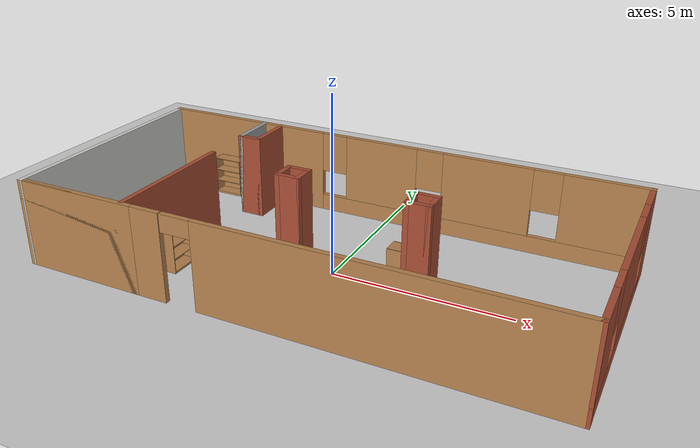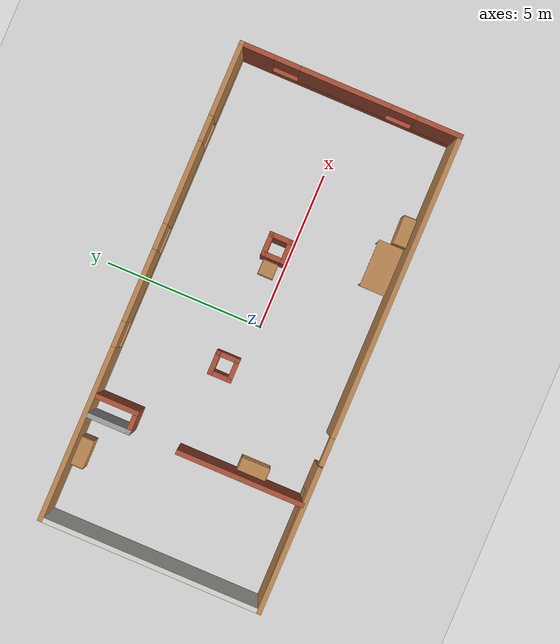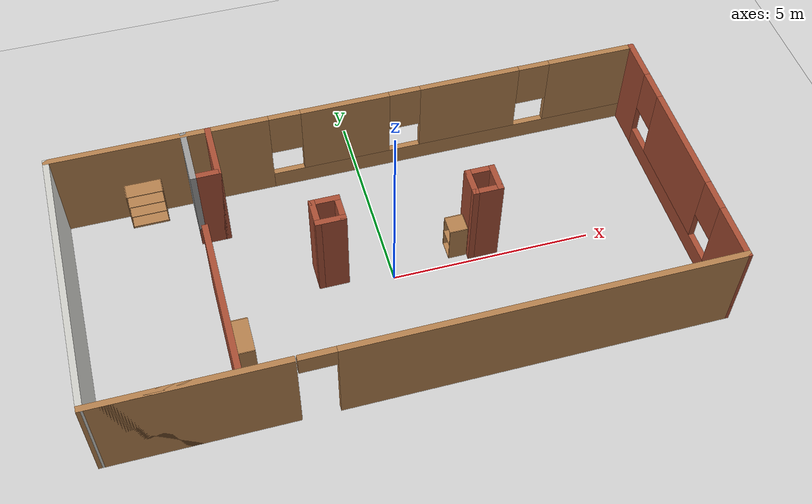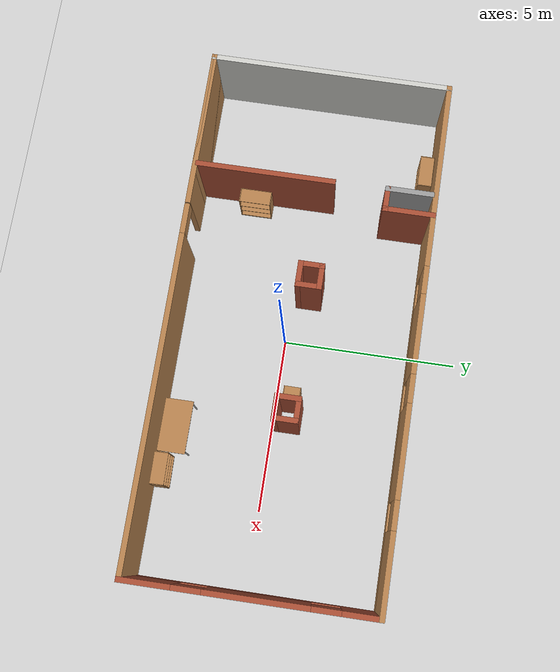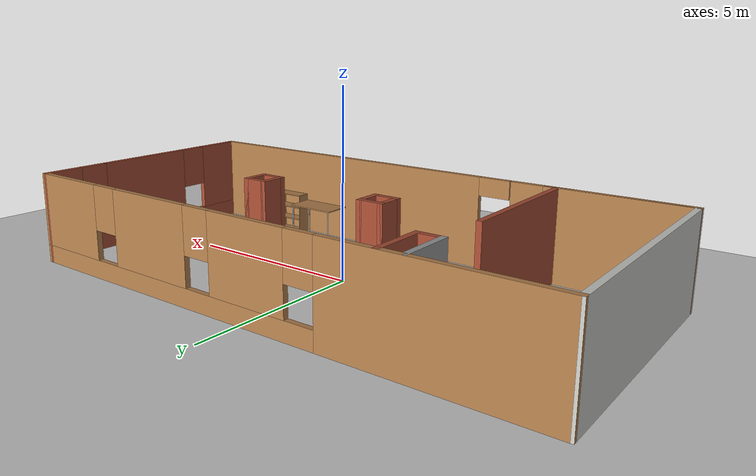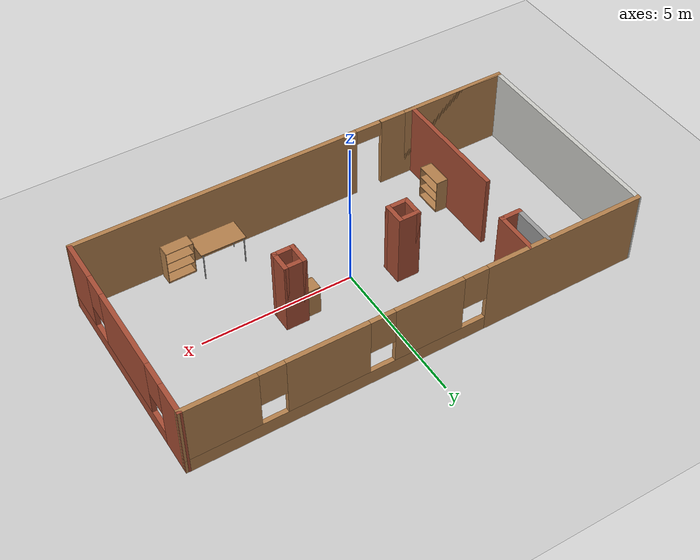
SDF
<sdf version="1.7">
 <world name="default">
  <light name="sun" type="directional">
   <pose>0 0 10 0 -0 0</pose>
   <diffuse>0.8 0.8 0.8 1</diffuse>
   <specular>0.2 0.2 0.2 1</specular>
   <attenuation>
    <range>1000</range>
    <constant>0.9</constant>
    <linear>0.01</linear>
    <quadratic>0.001</quadratic>
   </attenuation>
   <direction>-0.5 0.1 -0.9</direction>
   <spot><inner_angle>0</inner_angle><outer_angle>0</outer_angle><falloff>0</falloff></spot>
  </light>
  <model name="ground_plane">
   <static>1</static>
   <link name="link">
    <collision name="collision">
     <geometry><plane><normal>0 0 1</normal><size>100 100</size></plane></geometry>
     <surface><friction><ode><mu>100</mu><mu2>50</mu2></ode></friction></surface>
    </collision>
    <visual name="visual">
     <cast_shadows>0</cast_shadows>
     <geometry><plane><normal>0 0 1</normal><size>100 100</size></plane></geometry>
     <material>
      <script><uri>file://media/materials/scripts/gazebo.material</uri><name>Gazebo/Grey</name></script>
     </material>
    </visual>
   </link>
  </model>
  <gravity>0 0 -9.8</gravity>
  <magnetic_field>6e-06 2.3e-05 -4.2e-05</magnetic_field>
  <atmosphere type="adiabatic"/>
  <physics type="ode">
   <max_step_size>0.001</max_step_size>
   <real_time_factor>1</real_time_factor>
   <real_time_update_rate>1000</real_time_update_rate>
  </physics>
  <scene><ambient>0.4 0.4 0.4 1</ambient><background>0.7 0.7 0.7 1</background><shadows>1</shadows></scene>
  <spherical_coordinates>
   <surface_model>EARTH_WGS84</surface_model>
   <latitude_deg>0</latitude_deg>
   <longitude_deg>0</longitude_deg>
   <elevation>0</elevation>
   <heading_deg>0</heading_deg>
  </spherical_coordinates>
  <model name="cafe_serve_gyu">
   <pose>-0.121122 0.261214 0 0 -0 0</pose>
   <link name="Wall_1">
    <pose>0.00289 3.425 0 0 -0 7.1e-05</pose>
    <visual name="Wall_1_Visual_0">
     <pose>-4.7797 0 1.25 0 -0 0</pose>
     <geometry><box><size>5.4406 0.15 2.5</size></box></geometry>
     <material>
      <script><uri>file://media/materials/scripts/gazebo.material</uri><name>Gazebo/Wood</name></script>
      <ambient>1 1 1 1</ambient>
     </material>
     <meta><layer>0</layer></meta>
    </visual>
    <collision name="Wall_1_Collision_0">
     <geometry><box><size>5.4406 0.15 2.5</size></box></geometry>
     <pose>-4.7797 0 1.25 0 -0 0</pose>
    </collision>
    <visual name="Wall_1_Visual_1">
     <pose>2.7203 0 0.25 0 -0 0</pose>
     <geometry><box><size>9.5594 0.15 0.5</size></box></geometry>
     <material>
      <script><uri>file://media/materials/scripts/gazebo.material</uri><name>Gazebo/Wood</name></script>
      <ambient>1 1 1 1</ambient>
     </material>
     <meta><layer>0</layer></meta>
    </visual>
    <collision name="Wall_1_Collision_1">
     <geometry><box><size>9.5594 0.15 0.5</size></box></geometry>
     <pose>2.7203 0 0.25 0 -0 0</pose>
    </collision>
    <visual name="Wall_1_Visual_2">
     <pose>-0.133086 0 1.5 0 -0 0</pose>
     <geometry><box><size>2.25262 0.15 2</size></box></geometry>
     <material>
      <script><uri>file://media/materials/scripts/gazebo.material</uri><name>Gazebo/Wood</name></script>
      <ambient>1 1 1 1</ambient>
     </material>
     <meta><layer>0</layer></meta>
    </visual>
    <collision name="Wall_1_Collision_2">
     <geometry><box><size>2.25262 0.15 2</size></box></geometry>
     <pose>-0.133086 0 1.5 0 -0 0</pose>
    </collision>
    <visual name="Wall_1_Visual_3">
     <pose>3.08494 0 1.5 0 -0 0</pose>
     <geometry><box><size>2.58343 0.15 2</size></box></geometry>
     <material>
      <script><uri>file://media/materials/scripts/gazebo.material</uri><name>Gazebo/Wood</name></script>
      <ambient>1 1 1 1</ambient>
     </material>
     <meta><layer>0</layer></meta>
    </visual>
    <collision name="Wall_1_Collision_3">
     <geometry><box><size>2.58343 0.15 2</size></box></geometry>
     <pose>3.08494 0 1.5 0 -0 0</pose>
    </collision>
    <visual name="Wall_1_Visual_4">
     <pose>6.33833 0 1.5 0 -0 0</pose>
     <geometry><box><size>2.32335 0.15 2</size></box></geometry>
     <material>
      <script><uri>file://media/materials/scripts/gazebo.material</uri><name>Gazebo/Wood</name></script>
      <ambient>1 1 1 1</ambient>
     </material>
     <meta><layer>0</layer></meta>
    </visual>
    <collision name="Wall_1_Collision_4">
     <geometry><box><size>2.32335 0.15 2</size></box></geometry>
     <pose>6.33833 0 1.5 0 -0 0</pose>
    </collision>
    <visual name="Wall_1_Visual_5">
     <pose>-1.6594 0 1.9 0 -0 0</pose>
     <geometry><box><size>0.8 0.15 1.2</size></box></geometry>
     <material>
      <script><uri>file://media/materials/scripts/gazebo.material</uri><name>Gazebo/Wood</name></script>
      <ambient>1 1 1 1</ambient>
     </material>
     <meta><layer>0</layer></meta>
    </visual>
    <collision name="Wall_1_Collision_5">
     <geometry><box><size>0.8 0.15 1.2</size></box></geometry>
     <pose>-1.6594 0 1.9 0 -0 0</pose>
    </collision>
    <visual name="Wall_1_Visual_6">
     <pose>1.39323 0 1.9 0 -0 0</pose>
     <geometry><box><size>0.8 0.15 1.2</size></box></geometry>
     <material>
      <script><uri>file://media/materials/scripts/gazebo.material</uri><name>Gazebo/Wood</name></script>
      <ambient>1 1 1 1</ambient>
     </material>
     <meta><layer>0</layer></meta>
    </visual>
    <collision name="Wall_1_Collision_6">
     <geometry><box><size>0.8 0.15 1.2</size></box></geometry>
     <pose>1.39323 0 1.9 0 -0 0</pose>
    </collision>
    <visual name="Wall_1_Visual_7">
     <pose>4.77665 0 1.9 0 -0 0</pose>
     <geometry><box><size>0.8 0.15 1.2</size></box></geometry>
     <material>
      <script><uri>file://media/materials/scripts/gazebo.material</uri><name>Gazebo/Wood</name></script>
      <ambient>1 1 1 1</ambient>
     </material>
     <meta><layer>0</layer></meta>
    </visual>
    <collision name="Wall_1_Collision_7">
     <geometry><box><size>0.8 0.15 1.2</size></box></geometry>
     <pose>4.77665 0 1.9 0 -0 0</pose>
    </collision>
   </link>
   <link name="Wall_11">
    <collision name="Wall_11_Collision">
     <geometry><box><size>0.75 0.15 2.5</size></box></geometry>
     <pose>0 0 1.25 0 -0 0</pose>
    </collision>
    <visual name="Wall_11_Visual">
     <pose>0 0 1.25 0 -0 0</pose>
     <geometry><box><size>0.75 0.15 2.5</size></box></geometry>
     <material>
      <script><uri>file://media/materials/scripts/gazebo.material</uri><name>Gazebo/Bricks</name></script>
      <ambient>1 1 1 1</ambient>
     </material>
     <meta><layer>0</layer></meta>
    </visual>
    <pose>2.41058 0.486403 0 0 -0 0</pose>
   </link>
   <link name="Wall_12">
    <collision name="Wall_12_Collision">
     <geometry><box><size>0.75 0.15 2.5</size></box></geometry>
     <pose>0 0 1.25 0 -0 0</pose>
    </collision>
    <visual name="Wall_12_Visual">
     <pose>0 0 1.25 0 -0 0</pose>
     <geometry><box><size>0.75 0.15 2.5</size></box></geometry>
     <material>
      <script><uri>file://media/materials/scripts/gazebo.material</uri><name>Gazebo/Bricks</name></script>
      <ambient>1 1 1 1</ambient>
     </material>
     <meta><layer>0</layer></meta>
    </visual>
    <pose>2.71058 0.186403 0 0 -0 -1.5708</pose>
   </link>
   <link name="Wall_13">
    <collision name="Wall_13_Collision">
     <geometry><box><size>0.75 0.15 2.5</size></box></geometry>
     <pose>0 0 1.25 0 -0 0</pose>
    </collision>
    <visual name="Wall_13_Visual">
     <pose>0 0 1.25 0 -0 0</pose>
     <geometry><box><size>0.75 0.15 2.5</size></box></geometry>
     <material>
      <script><uri>file://media/materials/scripts/gazebo.material</uri><name>Gazebo/Bricks</name></script>
      <ambient>1 1 1 1</ambient>
     </material>
     <meta><layer>0</layer></meta>
    </visual>
    <pose>2.41058 -0.113597 0 0 -0 3.14159</pose>
   </link>
   <link name="Wall_14">
    <collision name="Wall_14_Collision">
     <geometry><box><size>0.75 0.15 2.5</size></box></geometry>
     <pose>0 0 1.25 0 -0 0</pose>
    </collision>
    <visual name="Wall_14_Visual">
     <pose>0 0 1.25 0 -0 0</pose>
     <geometry><box><size>0.75 0.15 2.5</size></box></geometry>
     <material>
      <script><uri>file://media/materials/scripts/gazebo.material</uri><name>Gazebo/Bricks</name></script>
      <ambient>1 1 1 1</ambient>
     </material>
     <meta><layer>0</layer></meta>
    </visual>
    <pose>2.11058 0.186403 0 0 -0 1.5708</pose>
   </link>
   <link name="Wall_16">
    <collision name="Wall_16_Collision">
     <geometry><box><size>0.75 0.15 2.5</size></box></geometry>
     <pose>0 0 1.25 0 -0 0</pose>
    </collision>
    <visual name="Wall_16_Visual">
     <pose>0 0 1.25 0 -0 0</pose>
     <geometry><box><size>0.75 0.15 2.5</size></box></geometry>
     <material>
      <script><uri>file://media/materials/scripts/gazebo.material</uri><name>Gazebo/Bricks</name></script>
      <ambient>1 1 1 1</ambient>
     </material>
     <meta><layer>0</layer></meta>
    </visual>
    <pose>-1.33551 0.566989 0 0 -0 0</pose>
   </link>
   <link name="Wall_17">
    <collision name="Wall_17_Collision">
     <geometry><box><size>0.75 0.15 2.5</size></box></geometry>
     <pose>0 0 1.25 0 -0 0</pose>
    </collision>
    <visual name="Wall_17_Visual">
     <pose>0 0 1.25 0 -0 0</pose>
     <geometry><box><size>0.75 0.15 2.5</size></box></geometry>
     <material>
      <script><uri>file://media/materials/scripts/gazebo.material</uri><name>Gazebo/Bricks</name></script>
      <ambient>1 1 1 1</ambient>
     </material>
     <meta><layer>0</layer></meta>
    </visual>
    <pose>-1.03551 0.266989 0 0 -0 -1.5708</pose>
   </link>
   <link name="Wall_18">
    <collision name="Wall_18_Collision">
     <geometry><box><size>0.75 0.15 2.5</size></box></geometry>
     <pose>0 0 1.25 0 -0 0</pose>
    </collision>
    <visual name="Wall_18_Visual">
     <pose>0 0 1.25 0 -0 0</pose>
     <geometry><box><size>0.75 0.15 2.5</size></box></geometry>
     <material>
      <script><uri>file://media/materials/scripts/gazebo.material</uri><name>Gazebo/Bricks</name></script>
      <ambient>1 1 1 1</ambient>
     </material>
     <meta><layer>0</layer></meta>
    </visual>
    <pose>-1.33551 -0.033011 0 0 -0 3.14159</pose>
   </link>
   <link name="Wall_19">
    <collision name="Wall_19_Collision">
     <geometry><box><size>0.75 0.15 2.5</size></box></geometry>
     <pose>0 0 1.25 0 -0 0</pose>
    </collision>
    <visual name="Wall_19_Visual">
     <pose>0 0 1.25 0 -0 0</pose>
     <geometry><box><size>0.75 0.15 2.5</size></box></geometry>
     <material>
      <script><uri>file://media/materials/scripts/gazebo.material</uri><name>Gazebo/Bricks</name></script>
      <ambient>1 1 1 1</ambient>
     </material>
     <meta><layer>0</layer></meta>
    </visual>
    <pose>-1.63551 0.266989 0 0 -0 1.5708</pose>
   </link>
   <link name="Wall_2">
    <pose>7.425 0.000525 0 0 -0 -1.57164</pose>
    <visual name="Wall_2_Visual_0">
     <pose>-2.94196 0 1.25 0 -0 0</pose>
     <geometry><box><size>1.11608 0.15 2.5</size></box></geometry>
     <material>
      <script><uri>file://media/materials/scripts/gazebo.material</uri><name>Gazebo/Bricks</name></script>
      <ambient>1 1 1 1</ambient>
     </material>
     <meta><layer>0</layer></meta>
    </visual>
    <collision name="Wall_2_Collision_0">
     <geometry><box><size>1.11608 0.15 2.5</size></box></geometry>
     <pose>-2.94196 0 1.25 0 -0 0</pose>
    </collision>
    <visual name="Wall_2_Visual_1">
     <pose>0.558042 0 0.25 0 -0 0</pose>
     <geometry><box><size>5.88391 0.15 0.5</size></box></geometry>
     <material>
      <script><uri>file://media/materials/scripts/gazebo.material</uri><name>Gazebo/Bricks</name></script>
      <ambient>1 1 1 1</ambient>
     </material>
     <meta><layer>0</layer></meta>
    </visual>
    <collision name="Wall_2_Collision_1">
     <geometry><box><size>5.88391 0.15 0.5</size></box></geometry>
     <pose>0.558042 0 0.25 0 -0 0</pose>
    </collision>
    <visual name="Wall_2_Visual_2">
     <pose>-0.156899 0 1.5 0 -0 0</pose>
     <geometry><box><size>2.85403 0.15 2</size></box></geometry>
     <material>
      <script><uri>file://media/materials/scripts/gazebo.material</uri><name>Gazebo/Bricks</name></script>
      <ambient>1 1 1 1</ambient>
     </material>
     <meta><layer>0</layer></meta>
    </visual>
    <collision name="Wall_2_Collision_2">
     <geometry><box><size>2.85403 0.15 2</size></box></geometry>
     <pose>-0.156899 0 1.5 0 -0 0</pose>
    </collision>
    <visual name="Wall_2_Visual_3">
     <pose>2.78506 0 1.5 0 -0 0</pose>
     <geometry><box><size>1.42988 0.15 2</size></box></geometry>
     <material>
      <script><uri>file://media/materials/scripts/gazebo.material</uri><name>Gazebo/Bricks</name></script>
      <ambient>1 1 1 1</ambient>
     </material>
     <meta><layer>0</layer></meta>
    </visual>
    <collision name="Wall_2_Collision_3">
     <geometry><box><size>1.42988 0.15 2</size></box></geometry>
     <pose>2.78506 0 1.5 0 -0 0</pose>
    </collision>
    <visual name="Wall_2_Visual_4">
     <pose>-1.98391 0 1.9 0 -0 0</pose>
     <geometry><box><size>0.8 0.15 1.2</size></box></geometry>
     <material>
      <script><uri>file://media/materials/scripts/gazebo.material</uri><name>Gazebo/Bricks</name></script>
      <ambient>1 1 1 1</ambient>
     </material>
     <meta><layer>0</layer></meta>
    </visual>
    <collision name="Wall_2_Collision_4">
     <geometry><box><size>0.8 0.15 1.2</size></box></geometry>
     <pose>-1.98391 0 1.9 0 -0 0</pose>
    </collision>
    <visual name="Wall_2_Visual_5">
     <pose>1.67012 0 1.9 0 -0 0</pose>
     <geometry><box><size>0.8 0.15 1.2</size></box></geometry>
     <material>
      <script><uri>file://media/materials/scripts/gazebo.material</uri><name>Gazebo/Bricks</name></script>
      <ambient>1 1 1 1</ambient>
     </material>
     <meta><layer>0</layer></meta>
    </visual>
    <collision name="Wall_2_Collision_5">
     <geometry><box><size>0.8 0.15 1.2</size></box></geometry>
     <pose>1.67012 0 1.9 0 -0 0</pose>
    </collision>
   </link>
   <link name="Wall_21">
    <collision name="Wall_21_Collision">
     <geometry><box><size>1.5 0.15 2.5</size></box></geometry>
     <pose>0 0 1.25 0 -0 0</pose>
    </collision>
    <visual name="Wall_21_Visual">
     <pose>0 0 1.25 0 -0 0</pose>
     <geometry><box><size>1.5 0.15 2.5</size></box></geometry>
     <material>
      <script><uri>file://media/materials/scripts/gazebo.material</uri><name>Gazebo/Grey</name></script>
      <ambient>1 1 1 1</ambient>
     </material>
     <meta><layer>0</layer></meta>
    </visual>
    <pose>-4.14343 2.74361 0 0 -0 -1.5708</pose>
   </link>
   <link name="Wall_22">
    <collision name="Wall_22_Collision">
     <geometry><box><size>0.75 0.15 2.5</size></box></geometry>
     <pose>0 0 1.25 0 -0 0</pose>
    </collision>
    <visual name="Wall_22_Visual">
     <pose>0 0 1.25 0 -0 0</pose>
     <geometry><box><size>0.75 0.15 2.5</size></box></geometry>
     <material>
      <script><uri>file://media/materials/scripts/gazebo.material</uri><name>Gazebo/Bricks</name></script>
      <ambient>1 1 1 1</ambient>
     </material>
     <meta><layer>0</layer></meta>
    </visual>
    <pose>-3.84343 2.06861 0 0 -0 0</pose>
   </link>
   <link name="Wall_26">
    <collision name="Wall_26_Collision">
     <geometry><box><size>1.5 0.15 2.5</size></box></geometry>
     <pose>0 0 1.25 0 -0 0</pose>
    </collision>
    <visual name="Wall_26_Visual">
     <pose>0 0 1.25 0 -0 0</pose>
     <geometry><box><size>1.5 0.15 2.5</size></box></geometry>
     <material>
      <script><uri>file://media/materials/scripts/gazebo.material</uri><name>Gazebo/Bricks</name></script>
      <ambient>1 1 1 1</ambient>
     </material>
     <meta><layer>0</layer></meta>
    </visual>
    <pose>-3.54343 2.74361 0 0 -0 1.5708</pose>
   </link>
   <link name="Wall_29">
    <collision name="Wall_29_Collision">
     <geometry><box><size>4 0.15 2.5</size></box></geometry>
     <pose>0 0 1.25 0 -0 0</pose>
    </collision>
    <visual name="Wall_29_Visual">
     <pose>0 0 1.25 0 -0 0</pose>
     <geometry><box><size>4 0.15 2.5</size></box></geometry>
     <material>
      <script><uri>file://media/materials/scripts/gazebo.material</uri><name>Gazebo/Bricks</name></script>
      <ambient>1 1 1 1</ambient>
     </material>
     <meta><layer>0</layer></meta>
    </visual>
    <pose>-4.12265 -1.41416 0 0 -0 -1.5708</pose>
   </link>
   <link name="Wall_3">
    <pose>-0.002891 -3.425 0 0 -0 -3.14152</pose>
    <visual name="Wall_3_Visual_0">
     <pose>-2.74218 0 1.25 0 -0 0</pose>
     <geometry><box><size>9.51564 0.15 2.5</size></box></geometry>
     <material>
      <script><uri>file://media/materials/scripts/gazebo.material</uri><name>Gazebo/Wood</name></script>
      <ambient>1 1 1 1</ambient>
     </material>
     <meta><layer>0</layer></meta>
    </visual>
    <collision name="Wall_3_Collision_0">
     <geometry><box><size>9.51564 0.15 2.5</size></box></geometry>
     <pose>-2.74218 0 1.25 0 -0 0</pose>
    </collision>
    <visual name="Wall_3_Visual_1">
     <pose>5.20782 0 1.25 0 -0 0</pose>
     <geometry><box><size>4.58436 0.15 2.5</size></box></geometry>
     <material>
      <script><uri>file://media/materials/scripts/gazebo.material</uri><name>Gazebo/Wood</name></script>
      <ambient>1 1 1 1</ambient>
     </material>
     <meta><layer>0</layer></meta>
    </visual>
    <collision name="Wall_3_Collision_1">
     <geometry><box><size>4.58436 0.15 2.5</size></box></geometry>
     <pose>5.20782 0 1.25 0 -0 0</pose>
    </collision>
    <visual name="Wall_3_Visual_2">
     <pose>5.6439 0 1.25 0 -0 0</pose>
     <geometry><box><size>3.71219 0.15 2.5</size></box></geometry>
     <material>
      <script><uri>file://media/materials/scripts/gazebo.material</uri><name>Gazebo/Wood</name></script>
      <ambient>1 1 1 1</ambient>
     </material>
     <meta><layer>0</layer></meta>
    </visual>
    <collision name="Wall_3_Collision_2">
     <geometry><box><size>3.71219 0.15 2.5</size></box></geometry>
     <pose>5.6439 0 1.25 0 -0 0</pose>
    </collision>
    <visual name="Wall_3_Visual_3">
     <pose>2.45172 0 2.25 0 -0 0</pose>
     <geometry><box><size>0.872168 0.15 0.5</size></box></geometry>
     <material>
      <script><uri>file://media/materials/scripts/gazebo.material</uri><name>Gazebo/Wood</name></script>
      <ambient>1 1 1 1</ambient>
     </material>
     <meta><layer>0</layer></meta>
    </visual>
    <collision name="Wall_3_Collision_3">
     <geometry><box><size>0.872168 0.15 0.5</size></box></geometry>
     <pose>2.45172 0 2.25 0 -0 0</pose>
    </collision>
   </link>
   <link name="Wall_4">
    <collision name="Wall_4_Collision">
     <geometry><box><size>6.99999 0.15 2.5</size></box></geometry>
     <pose>0 0 1.25 0 -0 0</pose>
    </collision>
    <visual name="Wall_4_Visual">
     <pose>0 0 1.25 0 -0 0</pose>
     <geometry><box><size>6.99999 0.15 2.5</size></box></geometry>
     <material>
      <script><uri>file://media/materials/scripts/gazebo.material</uri><name>Gazebo/CeilingTiled</name></script>
      <ambient>1 1 1 1</ambient>
     </material>
     <meta><layer>0</layer></meta>
    </visual>
    <pose>-7.425 -0.000528 0 0 -0 1.56995</pose>
   </link>
   <static>1</static>
  </model>
  <model name="cabinet">
   <static>1</static>
   <link name="cabinet_bottom_plate">
    <inertial>
     <pose>0 0 -1 0 -0 0</pose>
     <inertia><ixx>2.05</ixx><ixy>0</ixy><ixz>0</ixz><iyy>2.05</iyy><iyz>0</iyz><izz>2.05</izz></inertia>
     <mass>25</mass>
    </inertial>
    <collision name="cabinet_bottom_plate_geom">
     <pose>0 0 0.01 0 -0 0</pose>
     <geometry><box><size>0.45 0.45 0.02</size></box></geometry>
    </collision>
    <visual name="cabinet_bottom_plate_geom_visual">
     <pose>0 0 0.01 0 -0 0</pose>
     <geometry><box><size>0.45 0.45 0.02</size></box></geometry>
     <material>
      <script><uri>file://media/materials/scripts/gazebo.material</uri><name>Gazebo/Wood</name></script>
     </material>
    </visual>
    <collision name="cabinet_bottom_plate_geom_cabinet_back_plate">
     <pose>0.235 0 0.51 0 -0 0</pose>
     <geometry><box><size>0.02 0.45 1.02</size></box></geometry>
    </collision>
    <visual name="cabinet_bottom_plate_geom_cabinet_back_plate_visual">
     <pose>0.235 0 0.51 0 -0 0</pose>
     <geometry><box><size>0.02 0.45 1.02</size></box></geometry>
     <material>
      <script><uri>file://media/materials/scripts/gazebo.material</uri><name>Gazebo/Wood</name></script>
     </material>
    </visual>
    <collision name="cabinet_bottom_plate_geom_cabinet_left_plate">
     <pose>0 0.235 0.51 0 -0 0</pose>
     <geometry><box><size>0.45 0.02 1.02</size></box></geometry>
    </collision>
    <visual name="cabinet_bottom_plate_geom_cabinet_left_plate_visual">
     <pose>0 0.235 0.51 0 -0 0</pose>
     <geometry><box><size>0.45 0.02 1.02</size></box></geometry>
     <material>
      <script><uri>file://media/materials/scripts/gazebo.material</uri><name>Gazebo/Wood</name></script>
     </material>
    </visual>
    <collision name="cabinet_bottom_plate_geom_cabinet_middle_plate">
     <pose>0 0 0.51 0 -0 0</pose>
     <geometry><box><size>0.45 0.45 0.02</size></box></geometry>
    </collision>
    <visual name="cabinet_bottom_plate_geom_cabinet_middle_plate_visual">
     <pose>0 0 0.51 0 -0 0</pose>
     <geometry><box><size>0.45 0.45 0.02</size></box></geometry>
     <material>
      <script><uri>file://media/materials/scripts/gazebo.material</uri><name>Gazebo/Wood</name></script>
     </material>
    </visual>
    <collision name="cabinet_bottom_plate_geom_cabinet_right_plate">
     <pose>0 -0.235 0.51 0 -0 0</pose>
     <geometry><box><size>0.45 0.02 1.02</size></box></geometry>
    </collision>
    <visual name="cabinet_bottom_plate_geom_cabinet_right_plate_visual">
     <pose>0 -0.235 0.51 0 -0 0</pose>
     <geometry><box><size>0.45 0.02 1.02</size></box></geometry>
     <material>
      <script><uri>file://media/materials/scripts/gazebo.material</uri><name>Gazebo/Wood</name></script>
     </material>
    </visual>
    <collision name="cabinet_bottom_plate_geom_cabinet_top_plate">
     <pose>0 0 1.01 0 -0 0</pose>
     <geometry><box><size>0.45 0.45 0.02</size></box></geometry>
    </collision>
    <visual name="cabinet_bottom_plate_geom_cabinet_top_plate_visual">
     <pose>0 0 1.01 0 -0 0</pose>
     <geometry><box><size>0.45 0.45 0.02</size></box></geometry>
     <material>
      <script><uri>file://media/materials/scripts/gazebo.material</uri><name>Gazebo/Wood</name></script>
     </material>
    </visual>
   </link>
   <pose>1.67762 0.459195 0 0 -0 0</pose>
  </model>
  <model name="bookshelf">
   <static>1</static>
   <link name="link">
    <inertial><mass>1</mass></inertial>
    <collision name="back">
     <pose>0 0.005 0.6 0 -0 0</pose>
     <geometry><box><size>0.9 0.01 1.2</size></box></geometry>
    </collision>
    <visual name="visual1">
     <pose>0 0.005 0.6 0 -0 0</pose>
     <geometry><box><size>0.9 0.01 1.2</size></box></geometry>
     <material>
      <script><uri>file://media/materials/scripts/gazebo.material</uri><name>Gazebo/Wood</name></script>
     </material>
    </visual>
    <collision name="left_side">
     <pose>0.45 -0.195 0.6 0 -0 0</pose>
     <geometry><box><size>0.02 0.4 1.2</size></box></geometry>
    </collision>
    <visual name="visual2">
     <pose>0.45 -0.195 0.6 0 -0 0</pose>
     <geometry><box><size>0.02 0.4 1.2</size></box></geometry>
     <material>
      <script><uri>file://media/materials/scripts/gazebo.material</uri><name>Gazebo/Wood</name></script>
     </material>
    </visual>
    <collision name="right_side">
     <pose>-0.45 -0.195 0.6 0 -0 0</pose>
     <geometry><box><size>0.02 0.4 1.2</size></box></geometry>
    </collision>
    <visual name="visual3">
     <pose>-0.45 -0.195 0.6 0 -0 0</pose>
     <geometry><box><size>0.02 0.4 1.2</size></box></geometry>
     <material>
      <script><uri>file://media/materials/scripts/gazebo.material</uri><name>Gazebo/Wood</name></script>
     </material>
    </visual>
    <collision name="bottom">
     <pose>0 -0.195 0.03 0 -0 0</pose>
     <geometry><box><size>0.88 0.4 0.06</size></box></geometry>
    </collision>
    <visual name="visual4">
     <pose>0 -0.195 0.03 0 -0 0</pose>
     <geometry><box><size>0.88 0.4 0.06</size></box></geometry>
     <material>
      <script><uri>file://media/materials/scripts/gazebo.material</uri><name>Gazebo/Wood</name></script>
     </material>
    </visual>
    <collision name="top">
     <pose>0 -0.195 1.19 0 -0 0</pose>
     <geometry><box><size>0.88 0.4 0.02</size></box></geometry>
    </collision>
    <visual name="visual5">
     <pose>0 -0.195 1.19 0 -0 0</pose>
     <geometry><box><size>0.88 0.4 0.02</size></box></geometry>
     <material>
      <script><uri>file://media/materials/scripts/gazebo.material</uri><name>Gazebo/Wood</name></script>
     </material>
    </visual>
    <collision name="low_shelf">
     <pose>0 -0.195 0.43 0 -0 0</pose>
     <geometry><box><size>0.88 0.4 0.02</size></box></geometry>
    </collision>
    <visual name="visual6">
     <pose>0 -0.195 0.43 0 -0 0</pose>
     <geometry><box><size>0.88 0.4 0.02</size></box></geometry>
     <material>
      <script><uri>file://media/materials/scripts/gazebo.material</uri><name>Gazebo/Wood</name></script>
     </material>
    </visual>
    <collision name="high_shelf">
     <pose>0 -0.195 0.8 0 -0 0</pose>
     <geometry><box><size>0.88 0.4 0.02</size></box></geometry>
    </collision>
    <visual name="visual7">
     <pose>0 -0.195 0.8 0 -0 0</pose>
     <geometry><box><size>0.88 0.4 0.02</size></box></geometry>
     <material>
      <script><uri>file://media/materials/scripts/gazebo.material</uri><name>Gazebo/Wood</name></script>
     </material>
    </visual>
   </link>
   <pose>4.27308 -3.04329 0 0 0 -3.12437</pose>
  </model>
  <model name="table">
   <static>1</static>
   <link name="link">
    <collision name="surface">
     <pose>0 0 1 0 -0 0</pose>
     <geometry><box><size>1.5 0.8 0.03</size></box></geometry>
     <surface><friction><ode><mu>0.6</mu><mu2>0.6</mu2></ode></friction></surface>
    </collision>
    <visual name="visual1">
     <pose>0 0 1 0 -0 0</pose>
     <geometry><box><size>1.5 0.8 0.03</size></box></geometry>
     <material>
      <script><uri>file://media/materials/scripts/gazebo.material</uri><name>Gazebo/Wood</name></script>
     </material>
    </visual>
    <collision name="front_left_leg">
     <pose>0.68 0.38 0.5 0 -0 0</pose>
     <geometry><cylinder><radius>0.02</radius><length>1</length></cylinder></geometry>
    </collision>
    <visual name="front_left_leg">
     <pose>0.68 0.38 0.5 0 -0 0</pose>
     <geometry><cylinder><radius>0.02</radius><length>1</length></cylinder></geometry>
     <material>
      <script><uri>file://media/materials/scripts/gazebo.material</uri><name>Gazebo/Grey</name></script>
     </material>
    </visual>
    <collision name="front_right_leg">
     <pose>0.68 -0.38 0.5 0 -0 0</pose>
     <geometry><cylinder><radius>0.02</radius><length>1</length></cylinder></geometry>
    </collision>
    <visual name="front_right_leg">
     <pose>0.68 -0.38 0.5 0 -0 0</pose>
     <geometry><cylinder><radius>0.02</radius><length>1</length></cylinder></geometry>
     <material>
      <script><uri>file://media/materials/scripts/gazebo.material</uri><name>Gazebo/Grey</name></script>
     </material>
    </visual>
    <collision name="back_right_leg">
     <pose>-0.68 -0.38 0.5 0 -0 0</pose>
     <geometry><cylinder><radius>0.02</radius><length>1</length></cylinder></geometry>
    </collision>
    <visual name="back_right_leg">
     <pose>-0.68 -0.38 0.5 0 -0 0</pose>
     <geometry><cylinder><radius>0.02</radius><length>1</length></cylinder></geometry>
     <material>
      <script><uri>file://media/materials/scripts/gazebo.material</uri><name>Gazebo/Grey</name></script>
     </material>
    </visual>
    <collision name="back_left_leg">
     <pose>-0.68 0.38 0.5 0 -0 0</pose>
     <geometry><cylinder><radius>0.02</radius><length>1</length></cylinder></geometry>
    </collision>
    <visual name="back_left_leg">
     <pose>-0.68 0.38 0.5 0 -0 0</pose>
     <geometry><cylinder><radius>0.02</radius><length>1</length></cylinder></geometry>
     <material>
      <script><uri>file://media/materials/scripts/gazebo.material</uri><name>Gazebo/Grey</name></script>
     </material>
    </visual>
   </link>
   <pose>3.03037 -2.63563 0 0 -0 0</pose>
  </model>
  <model name="bookshelf_0">
   <static>1</static>
   <link name="link">
    <inertial><mass>1</mass></inertial>
    <collision name="back">
     <pose>0 0.005 0.6 0 -0 0</pose>
     <geometry><box><size>0.9 0.01 1.2</size></box></geometry>
    </collision>
    <visual name="visual1">
     <pose>0 0.005 0.6 0 -0 0</pose>
     <geometry><box><size>0.9 0.01 1.2</size></box></geometry>
     <material>
      <script><uri>file://media/materials/scripts/gazebo.material</uri><name>Gazebo/Wood</name></script>
     </material>
    </visual>
    <collision name="left_side">
     <pose>0.45 -0.195 0.6 0 -0 0</pose>
     <geometry><box><size>0.02 0.4 1.2</size></box></geometry>
    </collision>
    <visual name="visual2">
     <pose>0.45 -0.195 0.6 0 -0 0</pose>
     <geometry><box><size>0.02 0.4 1.2</size></box></geometry>
     <material>
      <script><uri>file://media/materials/scripts/gazebo.material</uri><name>Gazebo/Wood</name></script>
     </material>
    </visual>
    <collision name="right_side">
     <pose>-0.45 -0.195 0.6 0 -0 0</pose>
     <geometry><box><size>0.02 0.4 1.2</size></box></geometry>
    </collision>
    <visual name="visual3">
     <pose>-0.45 -0.195 0.6 0 -0 0</pose>
     <geometry><box><size>0.02 0.4 1.2</size></box></geometry>
     <material>
      <script><uri>file://media/materials/scripts/gazebo.material</uri><name>Gazebo/Wood</name></script>
     </material>
    </visual>
    <collision name="bottom">
     <pose>0 -0.195 0.03 0 -0 0</pose>
     <geometry><box><size>0.88 0.4 0.06</size></box></geometry>
    </collision>
    <visual name="visual4">
     <pose>0 -0.195 0.03 0 -0 0</pose>
     <geometry><box><size>0.88 0.4 0.06</size></box></geometry>
     <material>
      <script><uri>file://media/materials/scripts/gazebo.material</uri><name>Gazebo/Wood</name></script>
     </material>
    </visual>
    <collision name="top">
     <pose>0 -0.195 1.19 0 -0 0</pose>
     <geometry><box><size>0.88 0.4 0.02</size></box></geometry>
    </collision>
    <visual name="visual5">
     <pose>0 -0.195 1.19 0 -0 0</pose>
     <geometry><box><size>0.88 0.4 0.02</size></box></geometry>
     <material>
      <script><uri>file://media/materials/scripts/gazebo.material</uri><name>Gazebo/Wood</name></script>
     </material>
    </visual>
    <collision name="low_shelf">
     <pose>0 -0.195 0.43 0 -0 0</pose>
     <geometry><box><size>0.88 0.4 0.02</size></box></geometry>
    </collision>
    <visual name="visual6">
     <pose>0 -0.195 0.43 0 -0 0</pose>
     <geometry><box><size>0.88 0.4 0.02</size></box></geometry>
     <material>
      <script><uri>file://media/materials/scripts/gazebo.material</uri><name>Gazebo/Wood</name></script>
     </material>
    </visual>
    <collision name="high_shelf">
     <pose>0 -0.195 0.8 0 -0 0</pose>
     <geometry><box><size>0.88 0.4 0.02</size></box></geometry>
    </collision>
    <visual name="visual7">
     <pose>0 -0.195 0.8 0 -0 0</pose>
     <geometry><box><size>0.88 0.4 0.02</size></box></geometry>
     <material>
      <script><uri>file://media/materials/scripts/gazebo.material</uri><name>Gazebo/Wood</name></script>
     </material>
    </visual>
   </link>
   <pose>-5.46507 3.60062 0 0 -0 0</pose>
  </model>
  <model name="bookshelf_1">
   <static>1</static>
   <link name="link">
    <inertial><mass>1</mass></inertial>
    <collision name="back">
     <pose>0 0.005 0.6 0 -0 0</pose>
     <geometry><box><size>0.9 0.01 1.2</size></box></geometry>
    </collision>
    <visual name="visual1">
     <pose>0 0.005 0.6 0 -0 0</pose>
     <geometry><box><size>0.9 0.01 1.2</size></box></geometry>
     <material>
      <script><uri>file://media/materials/scripts/gazebo.material</uri><name>Gazebo/Wood</name></script>
     </material>
    </visual>
    <collision name="left_side">
     <pose>0.45 -0.195 0.6 0 -0 0</pose>
     <geometry><box><size>0.02 0.4 1.2</size></box></geometry>
    </collision>
    <visual name="visual2">
     <pose>0.45 -0.195 0.6 0 -0 0</pose>
     <geometry><box><size>0.02 0.4 1.2</size></box></geometry>
     <material>
      <script><uri>file://media/materials/scripts/gazebo.material</uri><name>Gazebo/Wood</name></script>
     </material>
    </visual>
    <collision name="right_side">
     <pose>-0.45 -0.195 0.6 0 -0 0</pose>
     <geometry><box><size>0.02 0.4 1.2</size></box></geometry>
    </collision>
    <visual name="visual3">
     <pose>-0.45 -0.195 0.6 0 -0 0</pose>
     <geometry><box><size>0.02 0.4 1.2</size></box></geometry>
     <material>
      <script><uri>file://media/materials/scripts/gazebo.material</uri><name>Gazebo/Wood</name></script>
     </material>
    </visual>
    <collision name="bottom">
     <pose>0 -0.195 0.03 0 -0 0</pose>
     <geometry><box><size>0.88 0.4 0.06</size></box></geometry>
    </collision>
    <visual name="visual4">
     <pose>0 -0.195 0.03 0 -0 0</pose>
     <geometry><box><size>0.88 0.4 0.06</size></box></geometry>
     <material>
      <script><uri>file://media/materials/scripts/gazebo.material</uri><name>Gazebo/Wood</name></script>
     </material>
    </visual>
    <collision name="top">
     <pose>0 -0.195 1.19 0 -0 0</pose>
     <geometry><box><size>0.88 0.4 0.02</size></box></geometry>
    </collision>
    <visual name="visual5">
     <pose>0 -0.195 1.19 0 -0 0</pose>
     <geometry><box><size>0.88 0.4 0.02</size></box></geometry>
     <material>
      <script><uri>file://media/materials/scripts/gazebo.material</uri><name>Gazebo/Wood</name></script>
     </material>
    </visual>
    <collision name="low_shelf">
     <pose>0 -0.195 0.43 0 -0 0</pose>
     <geometry><box><size>0.88 0.4 0.02</size></box></geometry>
    </collision>
    <visual name="visual6">
     <pose>0 -0.195 0.43 0 -0 0</pose>
     <geometry><box><size>0.88 0.4 0.02</size></box></geometry>
     <material>
      <script><uri>file://media/materials/scripts/gazebo.material</uri><name>Gazebo/Wood</name></script>
     </material>
    </visual>
    <collision name="high_shelf">
     <pose>0 -0.195 0.8 0 -0 0</pose>
     <geometry><box><size>0.88 0.4 0.02</size></box></geometry>
    </collision>
    <visual name="visual7">
     <pose>0 -0.195 0.8 0 -0 0</pose>
     <geometry><box><size>0.88 0.4 0.02</size></box></geometry>
     <material>
      <script><uri>file://media/materials/scripts/gazebo.material</uri><name>Gazebo/Wood</name></script>
     </material>
    </visual>
   </link>
   <pose>-4.14111 -1.46067 0 0 -0 1.57003</pose>
  </model>
 </world>
</sdf>
